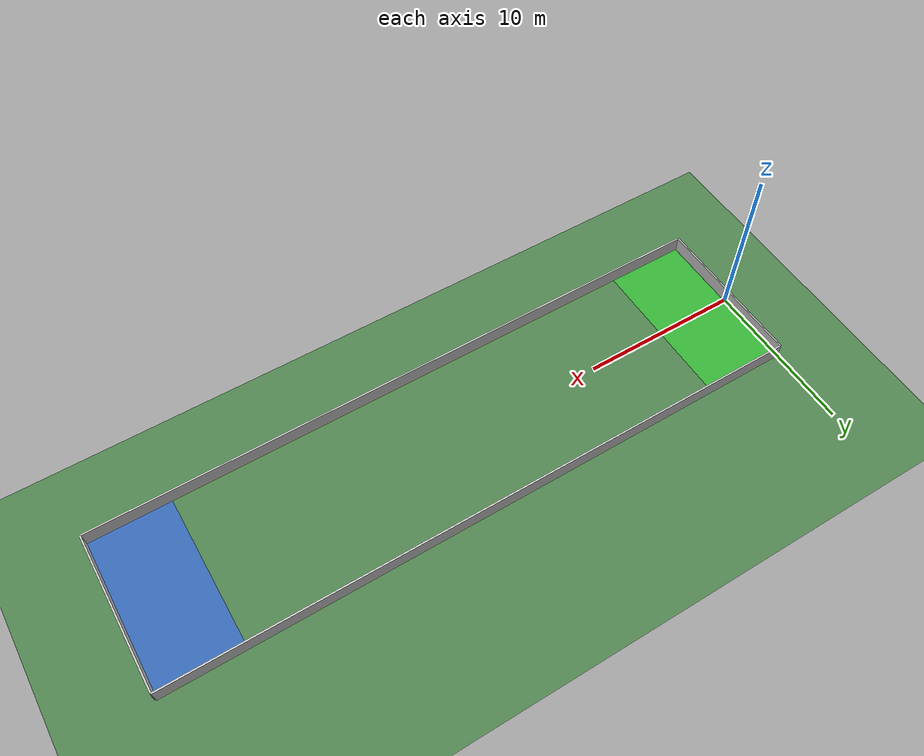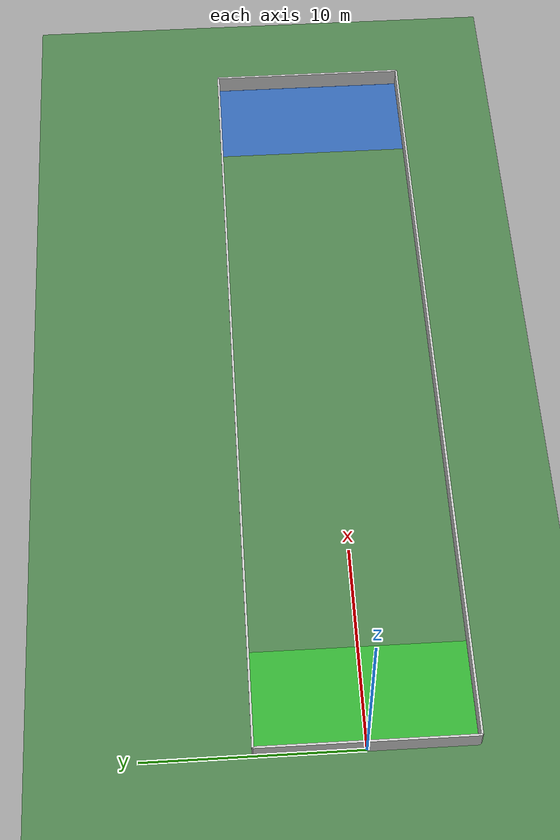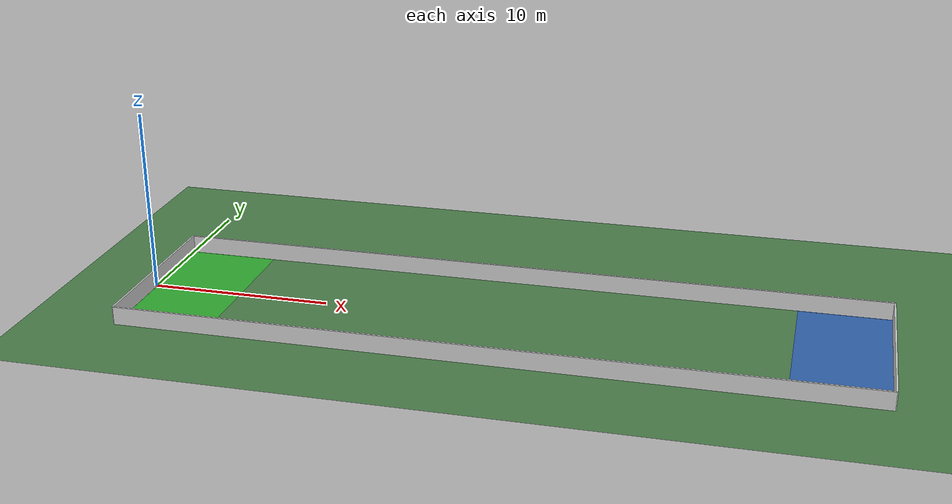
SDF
<?xml version="1.0" encoding="UTF-8"?>
<sdf version="1.9">
  <world name="stage1_seeded">
    <physics type="ode">
      <max_step_size>0.004</max_step_size>
      <real_time_factor>1.0</real_time_factor>
      <real_time_update_rate>250</real_time_update_rate>
    </physics>
    <gravity>0 0 -9.8</gravity>
    <magnetic_field>6e-06 2.3e-05 -4.2e-05</magnetic_field>
    <atmosphere type="adiabatic"/>
    <scene>
      <grid>false</grid>
      <ambient>0.4 0.4 0.4 1</ambient>
      <background>0.7 0.7 0.7 1</background>
      <shadows>true</shadows>
    </scene>
    <spherical_coordinates>
      <surface_model>EARTH_WGS84</surface_model>
      <world_frame_orientation>ENU</world_frame_orientation>
      <latitude_deg>47.397971057728974</latitude_deg>
      <longitude_deg>8.546163739800146</longitude_deg>
      <elevation>0</elevation>
    </spherical_coordinates>

    <plugin filename="gz-sim-physics-system" name="gz::sim::systems::Physics"/>
    <plugin filename="gz-sim-user-commands-system" name="gz::sim::systems::UserCommands"/>
    <plugin filename="gz-sim-scene-broadcaster-system" name="gz::sim::systems::SceneBroadcaster"/>
    <plugin filename="gz-sim-sensors-system" name="gz::sim::systems::Sensors">
      <render_engine>ogre2</render_engine>
    </plugin>
    <plugin filename="gz-sim-imu-system" name="gz::sim::systems::Imu"/>
    <plugin filename="gz-sim-air-pressure-system" name="gz::sim::systems::AirPressure"/>
    <plugin filename="gz-sim-magnetometer-system" name="gz::sim::systems::Magnetometer"/>
    <plugin filename="gz-sim-navsat-system" name="gz::sim::systems::NavSat"/>

    <light type="directional" name="sun">
      <cast_shadows>true</cast_shadows>
      <pose>0 0 10 0 0 0</pose>
      <diffuse>0.8 0.8 0.8 1</diffuse>
      <specular>0.2 0.2 0.2 1</specular>
      <direction>-0.5 0.1 -0.9</direction>
    </light>

    <model name="ground_plane">
      <static>true</static>
      <link name="link">
        <collision name="collision">
          <geometry>
            <plane>
              <normal>0 0 1</normal>
              <size>100 100</size>
            </plane>
          </geometry>
        </collision>
        <visual name="visual">
          <geometry>
            <plane>
              <normal>0 0 1</normal>
              <size>100 100</size>
            </plane>
          </geometry>
          <material>
            <ambient>0.3 0.4 0.3 1.0</ambient>
            <diffuse>0.3 0.5 0.3 1.0</diffuse>
          </material>
        </visual>
      </link>
    </model>

    <!-- Field Enclosure Walls (10m x 40m Field: X=[0,40], Y=[-5,5]) -->
    <model name="wall_north">
      <static>true</static>
      <pose>20.0 5.0 0.5 0 0 0</pose>
      <link name="link">
        <visual name="visual"><geometry><box><size>40.0 0.1 1.0</size></box></geometry><material><ambient>0.8 0.8 0.8 1.0</ambient></material></visual>
        <collision name="collision"><geometry><box><size>40.0 0.1 1.0</size></box></geometry></collision>
      </link>
    </model>

    <model name="wall_south">
      <static>true</static>
      <pose>20.0 -5.0 0.5 0 0 0</pose>
      <link name="link">
        <visual name="visual"><geometry><box><size>40.0 0.1 1.0</size></box></geometry><material><ambient>0.8 0.8 0.8 1.0</ambient></material></visual>
        <collision name="collision"><geometry><box><size>40.0 0.1 1.0</size></box></geometry></collision>
      </link>
    </model>

    <model name="wall_west">
      <static>true</static>
      <pose>0.0 0.0 0.5 0 0 0</pose>
      <link name="link">
        <visual name="visual"><geometry><box><size>0.1 10.0 1.0</size></box></geometry><material><ambient>0.8 0.8 0.8 1.0</ambient></material></visual>
        <collision name="collision"><geometry><box><size>0.1 10.0 1.0</size></box></geometry></collision>
      </link>
    </model>

    <model name="wall_east">
      <static>true</static>
      <pose>40.0 0.0 0.5 0 0 0</pose>
      <link name="link">
        <visual name="visual"><geometry><box><size>0.1 10.0 1.0</size></box></geometry><material><ambient>0.8 0.8 0.8 1.0</ambient></material></visual>
        <collision name="collision"><geometry><box><size>0.1 10.0 1.0</size></box></geometry></collision>
      </link>
    </model>

    <!-- Start Zone Mat (X=[0, 5], Y=[-5, 5]) -->
    <model name="start_zone_mat">
      <static>true</static>
      <pose>2.5 0.0 0.005 0 0 0</pose>
      <link name="link">
        <visual name="visual">
          <geometry><box><size>5.0 10.0 0.001</size></box></geometry>
          <material><ambient>0.1 0.6 0.1 0.7</ambient><diffuse>0.2 0.8 0.2 0.7</diffuse></material>
        </visual>
      </link>
    </model>

    <!-- Exit Zone Mat (X=[35, 40], Y=[-5, 5]) -->
    <model name="exit_zone_mat">
      <static>true</static>
      <pose>37.5 0.0 0.005 0 0 0</pose>
      <link name="link">
        <visual name="visual">
          <geometry><box><size>5.0 10.0 0.001</size></box></geometry>
          <material><ambient>0.1 0.3 0.8 0.7</ambient><diffuse>0.2 0.4 0.9 0.7</diffuse></material>
        </visual>
      </link>
    </model>
  </world>
</sdf>
